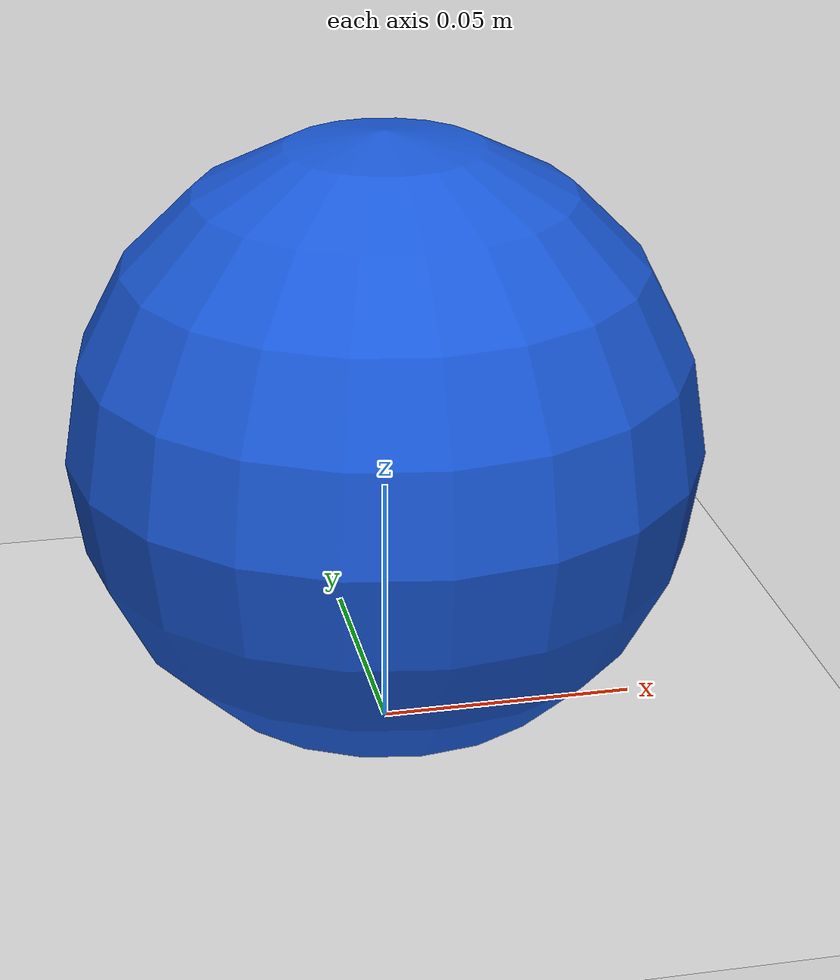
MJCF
<mujoco model="point_robot">
  <!-- One simulation step advances physical time by 0.01 seconds. -->
  <option timestep="0.01" gravity="0 0 0" integrator="RK4"/>

  <worldbody>
    <!-- The floor is visual context; zero gravity keeps this lesson one-dimensional. -->
    <geom
      name="floor"
      type="plane"
      size="3 1 0.1"
      rgba="0.85 0.85 0.85 1"
    />

    <body name="point_robot" pos="0 0 0.06">
      <!-- A slide joint permits translation only along the world x-axis. -->
      <joint
        name="x_slide"
        type="slide"
        axis="1 0 0"
        range="-5 5"
        damping="0.4"
      />
      <geom
        name="robot_body"
        type="sphere"
        size="0.06"
        mass="1.0"
        rgba="0.1 0.35 0.85 1"
      />
    </body>
  </worldbody>

  <actuator>
    <!-- ctrl[0] drives this motor; it is a force-like input, not a target position. -->
    <motor
      name="x_motor"
      joint="x_slide"
      ctrllimited="true"
      ctrlrange="-1 1"
    />
  </actuator>
</mujoco>
